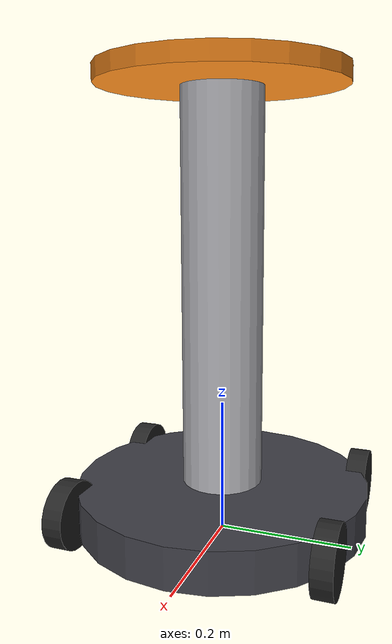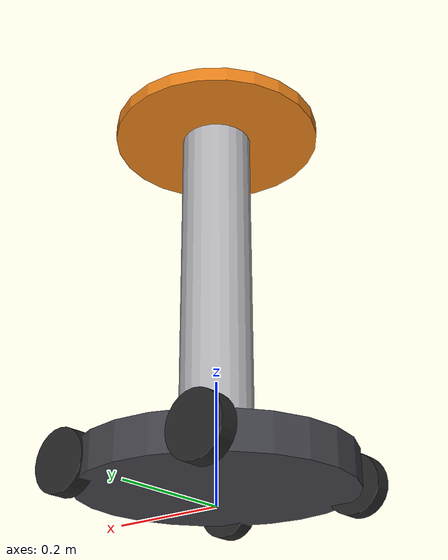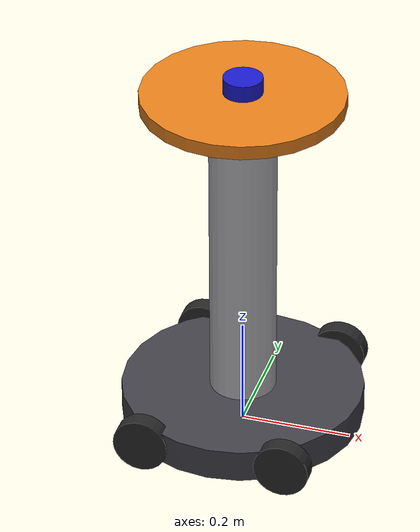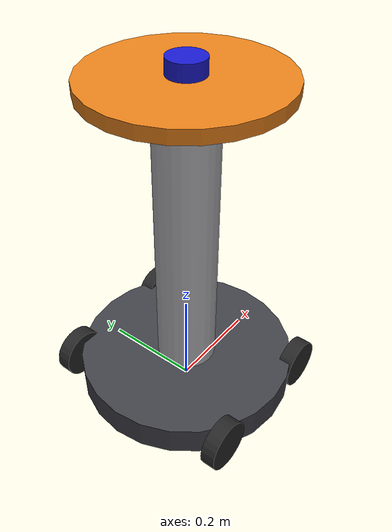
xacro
<?xml version="1.0"?>
<robot xmlns:xacro="http://www.ros.org/wiki/xacro" name="waiter_robot">

  <!-- ===================== PROPERTIES ===================== -->
  <!-- Wheels -->
  <xacro:property name="wheel_radius" value="0.05"/>
  <xacro:property name="wheel_width"  value="0.03"/>
  <xacro:property name="wheel_mass"   value="0.5"/>
  <xacro:property name="wheel_x"      value="0.13"/>
  <xacro:property name="wheel_y"      value="0.19"/>

  <!-- Base platform (where wheels attach) -->
  <xacro:property name="base_radius"  value="0.22"/>
  <xacro:property name="base_height"  value="0.06"/>
  <xacro:property name="base_mass"    value="8.0"/>

  <!-- Central column -->
  <xacro:property name="col_radius"   value="0.06"/>
  <xacro:property name="col_height"   value="0.58"/>
  <xacro:property name="col_mass"     value="3.0"/>

  <!-- Serving tray -->
  <xacro:property name="tray_radius"  value="0.18"/>
  <xacro:property name="tray_height"  value="0.025"/>
  <xacro:property name="tray_mass"    value="1.0"/>

  <!-- LiDAR -->
  <xacro:property name="lidar_radius" value="0.035"/>
  <xacro:property name="lidar_height" value="0.03"/>

  <!-- ===================== MACROS ========================= -->
  <xacro:macro name="cylinder_inertia" params="m r h">
    <inertial>
      <mass value="${m}"/>
      <inertia ixx="${(1.0/12.0)*m*(3*r*r + h*h)}" ixy="0" ixz="0"
               iyy="${(1.0/12.0)*m*(3*r*r + h*h)}" iyz="0"
               izz="${0.5*m*r*r}"/>
    </inertial>
  </xacro:macro>

  <!-- Wheel macro -->
  <xacro:macro name="wheel" params="prefix x_pos y_pos">
    <link name="${prefix}_wheel_link">
      <visual>
        <geometry><cylinder radius="${wheel_radius}" length="${wheel_width}"/></geometry>
        <material name="dark_grey"><color rgba="0.15 0.15 0.15 1"/></material>
      </visual>
      <collision>
        <geometry><cylinder radius="${wheel_radius}" length="${wheel_width}"/></geometry>
        <surface>
          <friction>
            <ode><mu>1.0</mu><mu2>1.0</mu2></ode>
          </friction>
        </surface>
      </collision>
      <xacro:cylinder_inertia m="${wheel_mass}" r="${wheel_radius}" h="${wheel_width}"/>
    </link>
    <joint name="${prefix}_wheel_joint" type="continuous">
      <parent link="base_link"/>
      <child  link="${prefix}_wheel_link"/>
      <!-- Wheels at axle height (z=0 in base_link frame = wheel_radius above ground) -->
      <origin xyz="${x_pos} ${y_pos} 0" rpy="${-pi/2} 0 0"/>
      <axis xyz="0 0 1"/>
      <dynamics damping="0.01" friction="0.1"/>
    </joint>
  </xacro:macro>

  <!-- ===================== LINKS ========================== -->
  <!-- Ground-level reference -->
  <link name="base_footprint"/>

  <!-- Base platform – wide flat disk at wheel axle height -->
  <link name="base_link">
    <visual>
      <geometry><cylinder radius="${base_radius}" length="${base_height}"/></geometry>
      <material name="charcoal"><color rgba="0.25 0.25 0.28 1"/></material>
    </visual>
    <collision>
      <geometry><cylinder radius="${base_radius}" length="${base_height}"/></geometry>
    </collision>
    <xacro:cylinder_inertia m="${base_mass}" r="${base_radius}" h="${base_height}"/>
  </link>

  <!-- base_footprint → base_link: lift so wheel bottoms touch ground -->
  <joint name="base_joint" type="fixed">
    <parent link="base_footprint"/>
    <child  link="base_link"/>
    <origin xyz="0 0 ${wheel_radius}" rpy="0 0 0"/>
  </joint>

  <!-- Central column/pillar -->
  <link name="column_link">
    <visual>
      <geometry><cylinder radius="${col_radius}" length="${col_height}"/></geometry>
      <material name="silver"><color rgba="0.7 0.7 0.72 1"/></material>
    </visual>
    <collision>
      <geometry><cylinder radius="${col_radius}" length="${col_height}"/></geometry>
    </collision>
    <xacro:cylinder_inertia m="${col_mass}" r="${col_radius}" h="${col_height}"/>
  </link>

  <joint name="column_joint" type="fixed">
    <parent link="base_link"/>
    <child  link="column_link"/>
    <origin xyz="0 0 ${base_height/2 + col_height/2}" rpy="0 0 0"/>
  </joint>

  <!-- Serving tray -->
  <link name="tray_link">
    <visual>
      <geometry><cylinder radius="${tray_radius}" length="${tray_height}"/></geometry>
      <material name="orange"><color rgba="0.9 0.5 0.1 1"/></material>
    </visual>
    <collision>
      <geometry><cylinder radius="${tray_radius}" length="${tray_height}"/></geometry>
    </collision>
    <xacro:cylinder_inertia m="${tray_mass}" r="${tray_radius}" h="${tray_height}"/>
  </link>

  <joint name="tray_joint" type="fixed">
    <parent link="column_link"/>
    <child  link="tray_link"/>
    <origin xyz="0 0 ${col_height/2 + tray_height/2}" rpy="0 0 0"/>
  </joint>

  <!-- LiDAR sensor on top of tray -->
  <link name="lidar_link">
    <visual>
      <geometry><cylinder radius="${lidar_radius}" length="${lidar_height}"/></geometry>
      <material name="blue"><color rgba="0.1 0.1 0.8 1"/></material>
    </visual>
    <collision>
      <geometry><cylinder radius="${lidar_radius}" length="${lidar_height}"/></geometry>
    </collision>
    <inertial>
      <mass value="0.1"/>
      <inertia ixx="0.0001" ixy="0" ixz="0" iyy="0.0001" iyz="0" izz="0.0001"/>
    </inertial>
  </link>

  <joint name="lidar_joint" type="fixed">
    <parent link="tray_link"/>
    <child  link="lidar_link"/>
    <origin xyz="0 0 ${tray_height/2 + lidar_height/2}" rpy="0 0 0"/>
  </joint>

  <!-- ===================== WHEELS ========================= -->
  <xacro:wheel prefix="front_left"  x_pos="${wheel_x}"  y_pos="${wheel_y}"/>
  <xacro:wheel prefix="front_right" x_pos="${wheel_x}"  y_pos="${-wheel_y}"/>
  <xacro:wheel prefix="rear_left"   x_pos="${-wheel_x}" y_pos="${wheel_y}"/>
  <xacro:wheel prefix="rear_right"  x_pos="${-wheel_x}" y_pos="${-wheel_y}"/>

  <!-- ===================== GAZEBO PLUGINS ================= -->
  <!-- Differential drive – 4 wheels -->
  <gazebo>
    <plugin filename="gz-sim-diff-drive-system" name="gz::sim::systems::DiffDrive">
      <left_joint>front_left_wheel_joint</left_joint>
      <left_joint>rear_left_wheel_joint</left_joint>
      <right_joint>front_right_wheel_joint</right_joint>
      <right_joint>rear_right_wheel_joint</right_joint>
      <wheel_separation>${2.0 * wheel_y}</wheel_separation>
      <wheel_radius>${wheel_radius}</wheel_radius>
      <topic>cmd_vel</topic>
      <odom_topic>odom</odom_topic>
      <!-- TF disabled – odom_tf_broadcaster handles it -->
      <tf_topic>__unused_tf</tf_topic>
      <frame_id>odom</frame_id>
      <child_frame_id>base_link</child_frame_id>
      <max_linear_acceleration>0.5</max_linear_acceleration>
      <max_angular_acceleration>1.0</max_angular_acceleration>
    </plugin>
  </gazebo>

  <!-- Joint state publisher for wheel visualization -->
  <gazebo>
    <plugin filename="gz-sim-joint-state-publisher-system"
            name="gz::sim::systems::JointStatePublisher"/>
  </gazebo>

  <!-- 2D LiDAR sensor (360°, 6m range) -->
  <gazebo reference="lidar_link">
    <sensor name="lidar" type="gpu_lidar">
      <always_on>true</always_on>
      <update_rate>10</update_rate>
      <topic>scan</topic>
      <lidar>
        <scan>
          <horizontal>
            <samples>360</samples>
            <resolution>1</resolution>
            <min_angle>-3.14159</min_angle>
            <max_angle>3.14159</max_angle>
          </horizontal>
        </scan>
        <range>
          <min>0.15</min>
          <max>6.0</max>
          <resolution>0.01</resolution>
        </range>
      </lidar>
    </sensor>
  </gazebo>

</robot>
